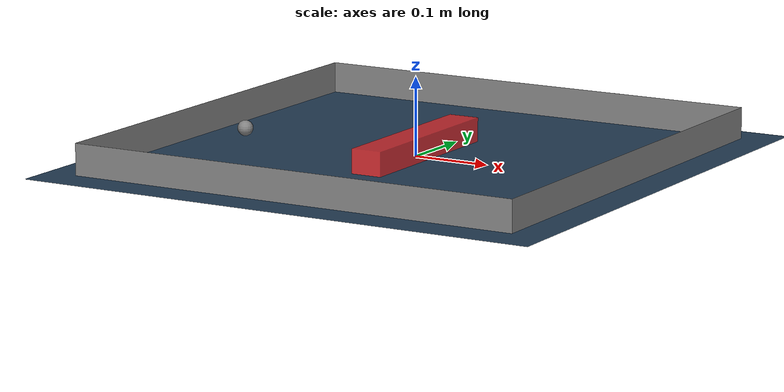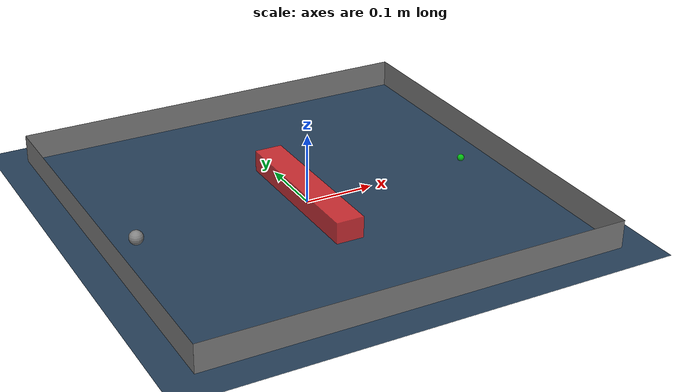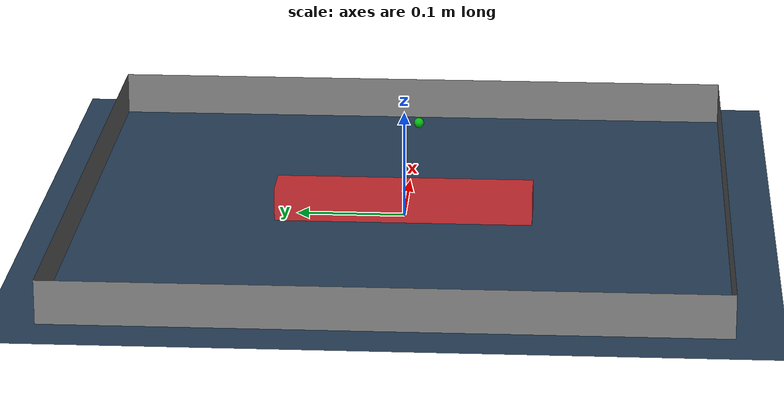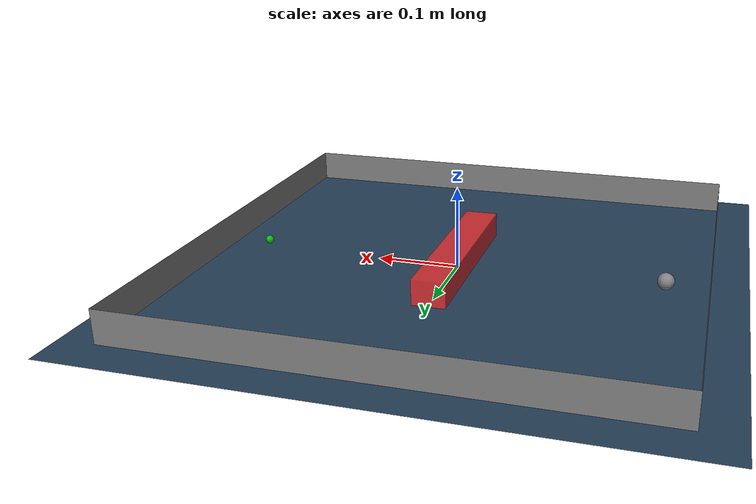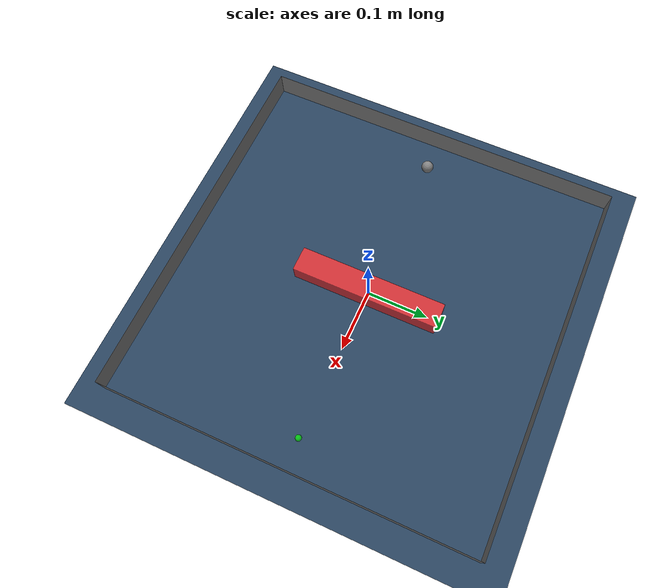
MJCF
<mujoco model="avoid_scene_vertical_block">
  <include file="particle_vertical_block.xml"/>

  <statistic center="0 0 0" extent="0.9"/>

  <visual>
    <headlight diffuse="0.6 0.6 0.6" ambient="0.3 0.3 0.3" specular="0 0 0"/>
    <rgba haze="0.15 0.25 0.35 1"/>
  </visual>

  <asset>
    <texture type="skybox" builtin="gradient" rgb1="0.3 0.5 0.7" rgb2="0 0 0" width="512" height="3072"/>
    <texture type="2d" name="groundplane" builtin="checker" mark="edge" rgb1="0.2 0.3 0.4" rgb2="0.1 0.2 0.3"
      markrgb="0.8 0.8 0.8" width="300" height="300"/>
    <material name="groundplane" texture="groundplane" texuniform="true" texrepeat="5 5" reflectance="0.2"/>
  </asset>

  <worldbody>
    <light pos="0 0 1"/>
    <geom name="floor" size="0 0 .125" type="plane" material="groundplane"/>
  </worldbody>
</mujoco>

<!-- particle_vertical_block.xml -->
<mujoco model="avoid_particle_vertical_block">
  <!--
    Planar point-mass with a tall vertical block in the center.
    Based on the MJPC particle task.
  -->
  <option timestep="0.01" iterations="1" ls_iterations="4">
    <flag contact="enable" eulerdamp="enable"/>
  </option>

  <worldbody>
    <body name="goal" mocap="true" pos="0.25 0 0.01" quat="1 0 0 0">
      <geom type="sphere" size=".005" contype="0" conaffinity="0" rgba="0 1 0 .7" />
    </body>

    <body name="obstacle" mocap="true" pos="0 0 0.0" quat="1 0 0 0">
      <geom
        name="obstacle_block"
        type="box"
        pos="0 0 0"
        size="0.02 0.12 0.03"
        rgba="1 0.2 0.2 0.8"
      />
    </body>

    <geom name="wall_x" type="plane" pos="-.3 0 .02" zaxis="1 0 0" size=".02 .3 .02" />
    <geom name="wall_y" type="plane" pos="0 -.3 .02" zaxis="0 1 0" size=".3 .02 .02" />
    <geom name="wall_neg_x" type="plane" pos=".3 0 .02" zaxis="-1 0 0" size=".02 .3 .02" />
    <geom name="wall_neg_y" type="plane" pos="0 .3 .02" zaxis="0 -1 0" size=".3 .02 .02" />

    <body name="pointmass" pos="-0.25 0 .01">
      <camera name="cam0" pos="0 -0.3 0.3" xyaxes="1 0 0 0 0.7 0.7" />
      <joint name="root_x" type="slide" pos="0 0 0" axis="1 0 0"
             limited="true" range="-0.1 0.6" damping="1"/>
      <joint name="root_y" type="slide" pos="0 0 0" axis="0 1 0"
             limited="true" range="-0.35 0.35" damping="1"/>
      <geom name="pointmass" type="sphere" size=".01" mass=".3" />
      <site name="pointmass" pos="0 0 0" size="0.01" />
    </body>
  </worldbody>

  <actuator>
    <motor name="x_motor" joint="root_x" gear="1" ctrllimited="true" ctrlrange="-1 1" />
    <motor name="y_motor" joint="root_y" gear="1" ctrllimited="true" ctrlrange="-1 1" />
  </actuator>
</mujoco>
